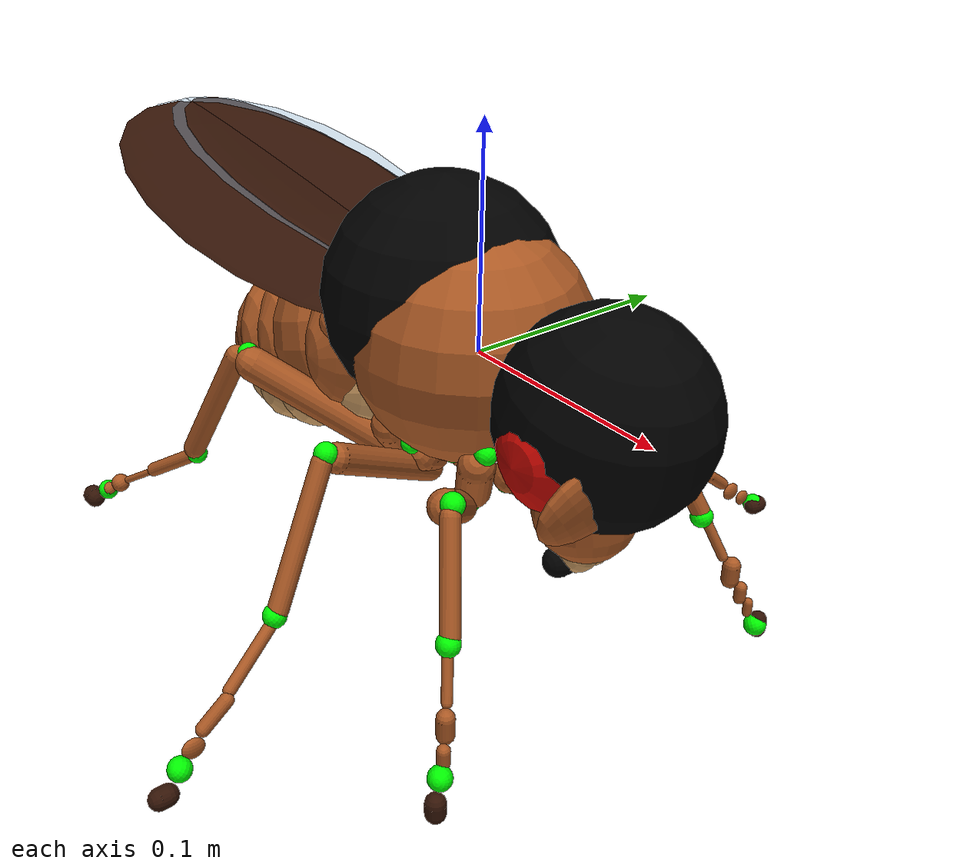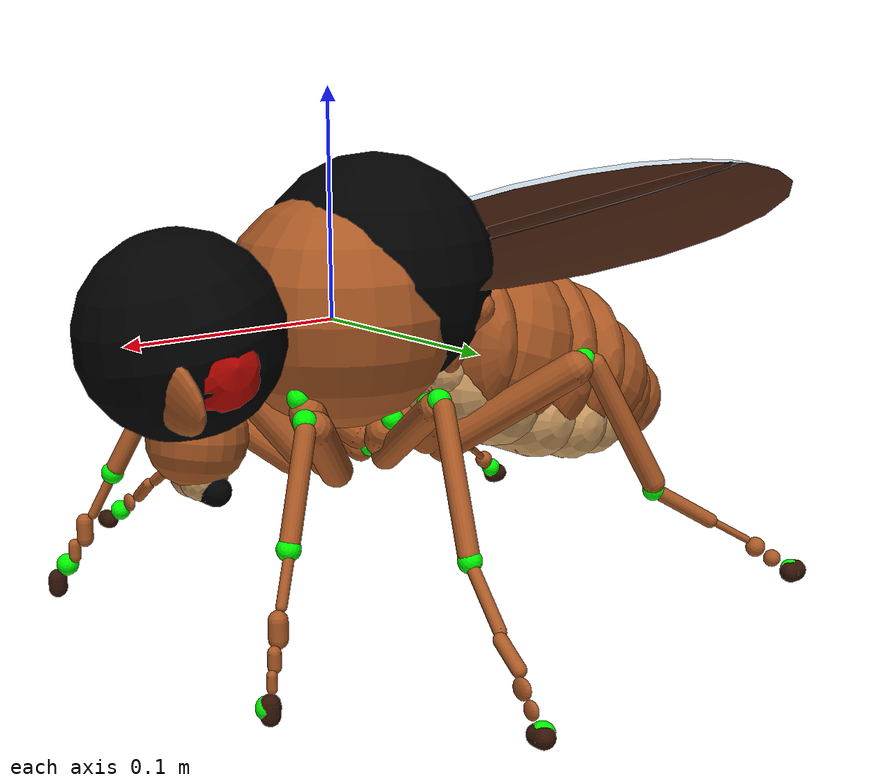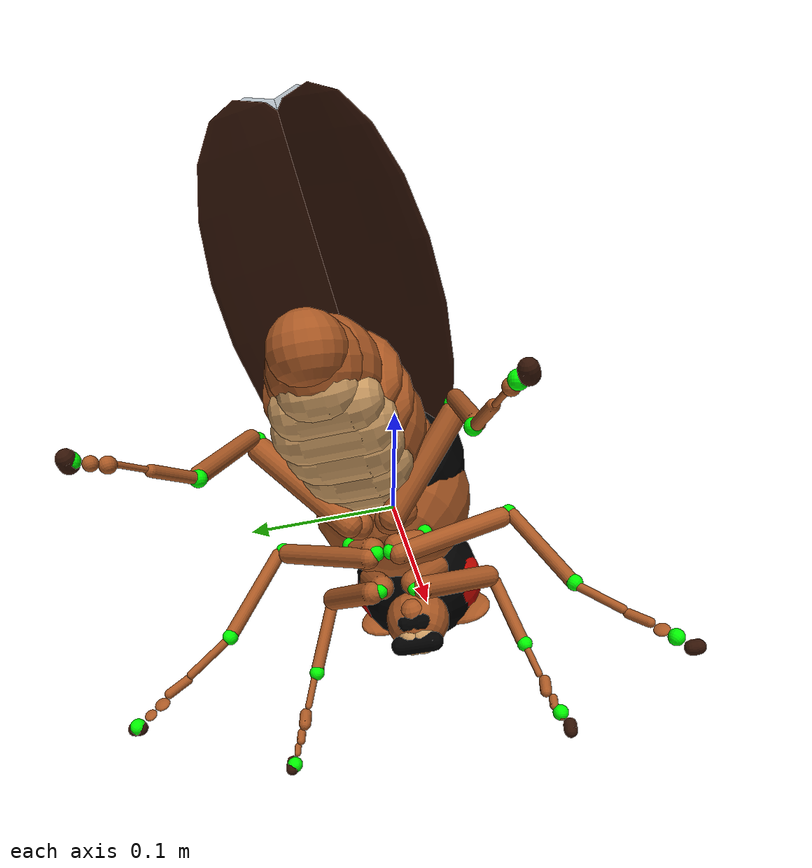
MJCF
<mujoco model="fruitfly">
  <compiler autolimits="true" angle="radian" />
  <option gravity="0 0 -981" density="0.00128" viscosity="0.000185" cone="elliptic" noslip_iterations="3" />
  <size njmax="300" nconmax="100" nkey="1" />
  <default>
    <mesh scale="0.1 0.1 0.1" />
    <geom friction="0.5" solref="0.0002 1" solimp="0.95 0.99 0.01" />
    <general ctrllimited="true" />
    <default class="body">
      <joint limited="true" solreflimit="0.001 1" armature="1e-02" />
      <geom type="mesh" contype="0" conaffinity="0" group="1" material="body" density="0.478" />
      <site group="3" size="0.01" />
      <default class="collision">
        <geom type="capsule" contype="1" conaffinity="1" condim="1" group="4" material="blue" density="0" />
        <default class="adhesion-collision">
          <geom material="pink" friction="0.6" margin="0.0005" gap="0.0005" />
          <site type="capsule" />
        </default>
        <default class="collision-membrane">
          <geom group="5" />
        </default>
      </default>
      <default class="adhesion">
        <general dyntype="none" dynprm="1" />
        <default class="adhesion_claw">
          <adhesion group="3" ctrlrange="0 1" gain="0.985" />
        </default>
        <default class="adhesion_labrum">
          <adhesion group="3" ctrlrange="0 1" gain="1" />
        </default>
      </default>
      <default class="head">
        <joint stiffness="0.03" damping="0.001" />
        <geom density="0.575" />
        <general forcerange="-0.1 0.1" gainprm="0.1" />
        <default class="labrum">
          <general forcerange="-0.01 0.01" gainprm="0.01" />
        </default>
      </default>
      <default class="antenna">
        <joint damping="0.0003" />
        <general forcerange="-0.01 0.01" gainprm="0.01" />
        <default class="antenna_extend">
          <joint axis="1 0 0" range="-0.2 0.5" />
        </default>
        <default class="antenna_twist">
          <joint axis="0 1 0" range="-0.1 0.09" />
        </default>
        <default class="antenna_abduct">
          <joint axis="0 0 1" range="-0.4 0.8" />
        </default>
      </default>
      <default class="wing">
        <joint stiffness="0.01" damping="0.0005" />
        <general ctrlrange="-.55 .55" />
        <default class="yaw">
          <joint axis="0 0 1" range="-1.5 1.5" springref="1.5" />
          <general gainprm="3" />
        </default>
        <default class="roll">
          <joint axis="1 0 0" range="-1 1.5" springref="0.7" />
          <general gainprm="2" />
        </default>
        <default class="pitch">
          <joint axis="0 1 0" range="-1.27 2.92" springref="-1" />
          <general gainprm="1" />
        </default>
        <default class="wing-inertial">
          <geom type="box" rgba="0 0 0 0" mass="8e-06" />
        </default>
        <default class="wing-fluid">
          <geom type="ellipsoid" group="3" mass="0" />
        </default>
      </default>
      <default class="abdomen">
        <joint group="3" stiffness="0.05" damping="0.01" />
        <geom density="0.445" />
        <general gainprm="0.1" />
        <default class="abduct_abdomen">
          <joint axis="0 0 1" range="-0.1 0.1" />
        </default>
        <default class="extend_abdomen">
          <joint axis="1 0 0" range="-0.15 0.1" />
        </default>
      </default>
      <default class="haltere">
        <joint axis="1 0 0" springdamper="0.005 0.1" range="-0.2 0.2" />
      </default>
      <default class="leg">
        <joint stiffness="0.01" />
        <geom density="1.21" />
        <default class="coxa">
          <default class="twist_coxa_T1">
            <joint axis="0 1 0" range="-0.8 0.8" />
            <general ctrlrange="-10 10" ctrllimited="true" />
          </default>
          <default class="flexion_coxa_T1">
            <joint axis="0 0 1" range="-1 0.7" />
            <general ctrlrange="-10 10" ctrllimited="true" />
          </default>
          <default class="extend_coxa_T1">
            <joint axis="1 0 0" range="-0.2 1.7" />
            <general ctrlrange="-10 10" ctrllimited="true" />
          </default>
          <default class="twist_coxa_T2">
            <joint axis="0 1 0" range="-0.75 0.8" />
            <general ctrlrange="-10 10" ctrllimited="true" />
          </default>
          <default class="flexion_coxa_T2">
            <joint axis="0 0 1" range="-0.5 0.3" />
            <general ctrlrange="-10 10" ctrllimited="true" />
          </default>
          <default class="extend_coxa_T2">
            <joint axis="1 0 0" range="-0.2 0.9" />
            <general ctrlrange="-10 10" ctrllimited="true" />
          </default>
          <default class="twist_coxa_T3">
            <joint axis="0 1 0" range="-0.15 0.8" />
            <general ctrlrange="-10 10" ctrllimited="true" />
          </default>
          <default class="flexion_coxa_T3">
            <joint axis="0 0 1" range="-0.9 0.25" />
            <general ctrlrange="-10 10" ctrllimited="true" />
          </default>
          <default class="extend_coxa_T3">
            <joint axis="1 0 0" range="-0.3 1.3" />
            <general ctrlrange="-10 10" ctrllimited="true" />
          </default>
        </default>
        <default class="femur">
          <default class="twist_femur">
            <joint axis="0 1 0" range="-1 1" />
            <general ctrlrange="-10 10" ctrllimited="true" />
            <default class="twist_femur_T2">
              <general ctrlrange="-10 10" ctrllimited="true" />
            </default>
            <default class="twist_femur_T3">
              <general ctrlrange="-10 10" ctrllimited="true" />
            </default>
          </default>
          <default class="extend_femur">
            <joint axis="1 0 0" range="-0.15 2" />
            <default class="extend_femur_T1">
              <general ctrlrange="-10 10" ctrllimited="true" />
            </default>
            <default class="extend_femur_T2">
              <general ctrlrange="-10 10" ctrllimited="true" />
            </default>
          </default>
          <default class="extend_femur_T3">
            <joint axis="1 0 0" range="-0.7 1.5" />
            <general ctrlrange="-10 10" ctrllimited="true" />
          </default>
        </default>
        <default class="tibia">
          <default class="extend_tibia">
            <joint axis="1 0 0" range="-1.35 1.3" />
            <general ctrlrange="-10 10" ctrllimited="true" />
            <default class="extend_tibia_T2">
              <general ctrlrange="-10 10" ctrllimited="true" />
            </default>
            <default class="extend_tibia_T3">
              <general ctrlrange="-10 10" ctrllimited="true" />
            </default>
          </default>
        </default>
        <default class="tarsus">
          <joint axis="1 0 0" />
          <default class="extend_tarsus_T1">
            <joint range="-0.7 1.2" />
            <general ctrlrange="-10 10" ctrllimited="true" />
          </default>
          <default class="extend_tarsus_T2">
            <joint range="-1 1.8" />
            <general ctrlrange="-10 10" ctrllimited="true" />
          </default>
          <default class="extend_tarsus_T3">
            <joint range="-0.8 1.2" />
            <general ctrlrange="-10 10" ctrllimited="true" />
          </default>
          <default class="extend_tarsus">
            <joint group="3" stiffness="0.1" range="-0.36 0.36" />
            <general ctrlrange="-10 10" ctrllimited="true" />
          </default>
        </default>
      </default>
    </default>
  </default>
  <visual>
    <global offwidth="3840" offheight="2160" />
    <quality shadowsize="2048" offsamples="24" />
    <headlight ambient="0.4 0.4 0.4" diffuse="0.8 0.8 0.8" specular="0.1 0.1 0.1" />
    <map stiffness="1e+04" stiffnessrot="5e+04" force="2e-05" />
    <scale jointwidth="0.01" framewidth="0.01" />
  </visual>
  <statistic meansize="0.02" />
  <asset>
    <texture name="grid" type="2d" builtin="checker" rgb1=".1 .2 .3" rgb2=".2 .3 .4" width="300" height="300" mark="edge" markrgb=".2 .3 .4" />
    <material name="grid" texture="grid" texrepeat="1 1" texuniform="true" reflectance=".2" />
    <texture type="2d" name="groundplane" builtin="checker" rgb1="0.2 0.3 0.4" rgb2="0.1 0.2 0.3" width="200" height="200" />
    <material name="body" shininess="0.6" rgba="0.674 0.35 0.143 1" />
    <material name="red" shininess="0.692" rgba="0.8 0.0279 0.00154 1" />
    <material name="ocelli" shininess="1" rgba="0.128 0.0488 0.0154 1" />
    <material name="black" shininess="0.727" rgba="0 0 0 1" />
    <material name="bristle-brown" shininess="0.907" rgba="0 0 0 1" />
    <material name="lower" shininess="0.6" rgba="0.799 0.61 0.386 1" />
    <material name="brown" shininess="0.6" rgba="0.202 0.0782 0.0262 1" />
    <material name="membrane" specular="0.62" shininess="0.907" rgba="0.539 0.686 0.8 0.4" />
    <material name="blue" shininess="0.6" rgba="0.2 0.3 1 1" />
    <material name="ballsurface" texture="groundplane" texuniform="true" texrepeat="2 2" reflectance="0.2" />
    <material name="pink" rgba="0.6 0.3 1 1" />
  </asset>
  <worldbody>
    <body name="thorax" childclass="body">
      <light name="right" mode="trackcom" pos="0 -1 1" dir="0 1 -1" diffuse="0.3 0.3 0.3" />
      <camera name="track1" mode="trackcom" pos="0.6 0.6 0.22" quat="0.312 0.221 0.533 0.754" />
      <camera name="track2" mode="trackcom" pos="0 -1.1 0.1" quat="0.707 0.707 0 0" />
      <camera name="track3" mode="trackcom" pos="-0.9 -0.9 0.9" quat="0.82 0.425 -0.176 -0.34" />
      <camera name="back" mode="track" pos="-0.462 0 0.297" xyaxes="0 -1 0 0.707 0 0.707" />
      <camera name="side" mode="track" pos="-0.055 0.424 -0.064" xyaxes="-1 0 0 0 0 1" />
      <camera name="bottom" mode="track" pos="0.01 0 -0.516" xyaxes="0 1 0 0.991 0 0.136" />
      <light name="left" mode="trackcom" pos="0 1 1" dir="0 -1 -1" diffuse="0.3 0.3 0.3" />
      <light name="tracking" mode="trackcom" pos="0 0 1" />
      <site name="thorax_site" />
      <site name="hover_up_dir" pos="0.0262 0 0.0262" quat="0.915 0 0.403 0" />
      <geom name="thorax" mass="0.00034" pos="-0.00416991 3.8147e-07 0.0046216" type="sphere" size="0.0526589" />
      <geom name="thorax_collision" class="collision" type="ellipsoid" size="0.0437 0.0437 0.0551" pos="0.00168 0 -0.00262" quat="0 -0.479 0 -0.878" />
      <geom name="thorax_collision2" class="collision" type="ellipsoid" size="0.0499 0.028 0.0114" pos="-0.00445 0 0.0219" quat="0 -0.199 0 -0.98" />
      <geom name="thorax_black" material="black" mass="0" pos="-0.0238946 -0.000445322 0.0183603" type="sphere" size="0.0530646" />
      <body name="head" childclass="head" pos="0.0567 3.81e-07 -0.00305" quat="0.702 -0.087 0.087 -0.702">
        <site name="head_site" pos="0 0.015 0" quat="0 0 0 1" />
        <geom name="head_collision" class="collision" type="ellipsoid" size="0.0455 0.0262 0.0324" pos="0 0.0149 0.000875" euler="0.3 0 0" />
        <geom name="head" pos="3.40006e-08 0.0196711 0.00157814" type="sphere" size="0.0322604" />
        <geom name="head_red" material="red" pos="3.40006e-08 0.0178867 0.00340486" type="capsule" size="0.0259542 0.0193202" quat="0.401538 0.582037 -0.401538 -0.582037" />
        <geom name="head_ocelli" material="ocelli" pos="-1.1812e-05 0.0192126 0.0317863" type="capsule" size="0.00299767 0.00237788" quat="0.557699 -0.434709 0.557699 -0.434709" />
        <camera name="eye_right" fovy="140" pos="0.0219 0.0131 0" quat="0.474 0.688 -0.344 -0.429" />
        <camera name="eye_left" fovy="140" pos="-0.0219 0.0131 0" quat="0.474 0.688 0.344 0.429" />
        <geom name="head_black" material="black" mass="0" pos="-0.000956352 0.0164357 0.00955916" type="sphere" size="0.0439881" />
        <body name="rostrum" pos="0 0.0368 -0.0235" quat="2.2e-07 -1.21e-07 0.192 -0.981">
          <geom name="rostrum" pos="-2.00204e-08 0.0188873 -0.00389886" type="sphere" size="0.0216166" />
          <geom name="rostrum_collision_right" class="collision" size="0.0035" fromto="0.00613 0.0324 0 0.0114 0.0245 -0.0236" />
          <geom name="rostrum_collision_left" class="collision" size="0.0035" fromto="-0.00613 0.0324 0 -0.0114 0.0245 -0.0236" />
          <geom name="rostrum_collision" class="collision" type="ellipsoid" size="0.0131 0.0219 0.0131" pos="0 0.0175 0.00263" euler="0.1 0 0" />
          <geom name="rostrum_bristle-brown" material="bristle-brown" pos="-1.92753e-08 0.0237805 -0.0252153" type="capsule" size="0.00642836 0.011294" quat="0.463827 0.533727 0.463827 0.533727" />
          <body name="haustellum" pos="0 0.0377 0" quat="2.33e-07 -1.56e-07 -0.347 0.938">
            <geom name="haustellum" pos="4.66281e-08 0.0122925 -0.00107128" type="capsule" size="0.00908976 0.00490103" quat="0.632956 0.774188 0 0" />
            <geom name="haustellum_collision" class="collision" type="capsule" size="0.00788 0.00788" pos="0 0.0123 -0.000948" quat="0.633 0.774 0 0" />
            <geom name="haustellum_black" material="black" mass="0" pos="9.39109e-05 0.0141229 -0.00269677" type="capsule" size="0.00953929 0.00374094" quat="0.340035 0.619981 -0.340035 -0.619981" />
            <body name="labrum_left" childclass="labrum" pos="-0.00263 0.0182 0" quat="0.741 -0.0142 -0.591 0.319">
              <geom name="labrum_left_lower" material="lower" pos="-0.000802061 0.0083688 -0.00346569" type="sphere" size="0.0102514" />
              <geom name="labrum_left_lower_collision" class="adhesion-collision" type="ellipsoid" size="0.0035 0.00875 0.0131" pos="-0.000603 0.0106 -0.00438" quat="-0.174 -0.715 0.0876 0.672" />
            </body>
            <body name="labrum_right" childclass="labrum" pos="0.00263 0.0182 0" quat="0.699 0.00274 0.642 -0.316">
              <geom name="labrum_right_lower" material="lower" pos="0.00111101 0.00854922 -0.00331572" type="sphere" size="0.0102514" />
              <geom name="labrum_right_lower_collision" class="adhesion-collision" type="ellipsoid" size="0.0035 0.00875 0.0131" pos="0.00116 0.0106 -0.00414" quat="-0.175 -0.668 -0.0724 -0.719" />
            </body>
          </body>
        </body>
        <body name="antenna_left" pos="-0.00795 0.0378 0.0129" quat="0.785 -0.59 -0.0128 0.192">
          <geom name="antenna_left" pos="-0.0127332 0.0172294 0.00276934" type="ellipsoid" size="0.00540057 0.0168397 0.0238518" quat="-0.191167 0.618154 -0.382605 -0.659511" />
          <geom name="antenna_left_collision" class="collision" type="capsule" size="0.00481 0.00875" pos="0 0.0114 0.00263" quat="0.634 -0.773 0 0" />
          <geom name="antenna_left_black" material="black" mass="0" pos="-0.00108258 0.00432222 0.00683451" type="sphere" size="0.00538933" />
        </body>
        <body name="antenna_right" pos="0.00861 0.038 0.0129" quat="0.59 0.785 -0.192 -0.0128">
          <geom name="antenna_right" pos="0.0122325 -0.0172292 -0.00276918" type="ellipsoid" size="0.0054006 0.0168397 0.0238519" quat="-0.65951 0.382606 0.618154 0.191168" />
          <geom name="antenna_right_collision" class="collision" type="capsule" size="0.00481 0.00875" pos="-0.000616 -0.0114 -0.00231" quat="0.782 0.623 -0.0258 -0.0164" />
          <geom name="antenna_right_black" material="black" mass="0" pos="0.000581903 -0.00432197 -0.00683437" type="sphere" size="0.00538934" />
        </body>
      </body>
      <body name="wing_left" childclass="wing" pos="-0.00694 0.0432 0.0091" quat="0.617    -0.402    -0.304    -0.604">
        <geom name="wing_left_brown" material="brown" mass="0" pos="0.0243478 -0.128904 -0.0265263" type="ellipsoid" size="0.00312095 0.0525679 0.133699" quat="-0.656571 -0.663353 0.253573 -0.254121" />
        <geom name="wing_left_brown_collision" class="collision" type="ellipsoid" size="0.00219 0.0175 0.114" pos="0.00186 -0.11 -0.00166" quat="-0.673 -0.647 0.26 -0.248" />
        <geom name="wing_left_membrane" material="membrane" mass="0" pos="0.0266037 -0.132028 -0.0290936" type="ellipsoid" size="0.000174289 0.0554888 0.130025" quat="-0.649138 -0.670539 0.250921 -0.256976" />
        <geom name="wing_left_membrane_collision" class="collision-membrane" type="ellipsoid" size="0.00306 0.0551 0.114" pos="0.0263 -0.148 -0.0289" quat="-0.685 -0.634 0.265 -0.243" />
        <geom name="wing_left_fluid" class="wing-fluid" size="0.0005 0.0551 0.114" pos="0.0263 -0.148 -0.0289" quat="-0.685 -0.634 0.265 -0.243" />
        <geom name="wing_left_inertial" class="wing-inertial" size="0.0005 0.0551 0.114" pos="0.0263 -0.148 -0.0289" quat="-0.685 -0.634 0.265 -0.243" />
      </body>
      <body name="wing_right" childclass="wing" pos="-0.00694 -0.0432 0.0091" quat="-0.304     0.604    -0.617    -0.402 ">
        <geom name="wing_right_brown" material="brown" mass="0" pos="-0.0243472 0.128903 0.0265271" type="ellipsoid" size="0.00312096 0.0525678 0.133699" quat="0.25411 0.253564 0.663354 -0.656578" />
        <geom name="wing_right_brown_collision" class="collision" type="ellipsoid" size="0.00219 0.0175 0.114" pos="-0.00186 0.11 0.00166" quat="0.248 0.26 0.647 -0.673" />
        <geom name="wing_right_membrane" material="membrane" mass="0" pos="-0.0266031 0.132027 0.0290942" type="ellipsoid" size="0.000174286 0.0554888 0.130025" quat="0.256968 0.250913 0.670542 -0.649141" />
        <geom name="wing_right_membrane_collision" class="collision-membrane" type="ellipsoid" size="0.00306 0.0551 0.114" pos="-0.0263 0.148 0.0289" quat="0.243 0.265 0.634 -0.685" />
        <geom name="wing_right_fluid" class="wing-fluid" size="0.0005 0.0551 0.114" pos="-0.0263 0.148 0.0289" quat="0.243 0.265 0.634 -0.685" />
        <geom name="wing_right_inertial" class="wing-inertial" size="0.0005 0.0551 0.114" pos="-0.0263 0.148 0.0289" quat="0.243 0.265 0.634 -0.685" />
      </body>
      <body name="abdomen" childclass="abdomen" pos="-0.0447 -0.000555 0.00428" quat="-0.704 -0.0859 -0.0853 -0.7">
        <geom name="abdomen" pos="-6.51608e-05 0.0029425 -0.012634" type="ellipsoid" size="0.00970442 0.0303679 0.0327778" quat="0.587787 0.38944 0.581575 0.405727" />
        <geom name="abdomen_lower" material="lower" pos="-0.000338511 -0.00113727 -0.0331854" type="capsule" size="0.0105244 0.0153999" quat="0.538679 0.454951 0.542017 0.457233" />
        <geom name="abdomen_collision" class="collision" type="cylinder" size="0.0281 0.0102 0" pos="-0.000187 0.00646 -0.0146" quat="0.0104 -0.0205 0.824 0.566" />
        <body name="abdomen_2" pos="0 0.0119 0" quat="0.981 -0.192 -0.000269 0.00144">
          <geom name="abdomen_2" pos="-0.000569904 0.0151522 -0.0216331" type="ellipsoid" size="0.0183528 0.041455 0.0415075" quat="0.480713 0.518568 0.47576 0.52312" />
          <geom name="abdomen_2_lower" material="lower" pos="0.000506006 0.0169168 -0.0423167" type="capsule" size="0.0219737 0.0100268" quat="0.274881 0.650786 0.285815 0.647478" />
          <geom name="abdomen_2_collision" class="collision" type="cylinder" size="0.035 0.0142 0" pos="-0.000182 0.0166 -0.015" quat="-0.0458 -0.0256 0.694 0.718" />
          <body name="abdomen_3" pos="0 0.0212 0" quat="0.996 -0.0909 6.69e-05 0.000525">
            <geom name="abdomen_3" pos="0.000114405 0.0211676 -0.0214114" type="sphere" size="0.0422489" />
            <geom name="abdomen_3_lower" material="lower" pos="0.000551221 0.022426 -0.0453978" type="capsule" size="0.0221697 0.0113192" quat="0.128107 0.694435 0.131295 0.695781" />
            <geom name="abdomen_3_collision" class="collision" type="cylinder" size="0.0371 0.0194 0" pos="3.29e-05 0.0198 -0.0136" quat="0.697 -0.605 0.274 0.271" />
            <body name="abdomen_4" pos="0 0.0313 0" quat="0.999 -0.0332 0.000147 -0.000229">
              <geom name="abdomen_4" pos="0.000414169 0.0166373 -0.0197631" type="ellipsoid" size="0.0206209 0.0439879 0.0415087" quat="0.436858 0.549622 0.436698 0.562464" />
              <geom name="abdomen_4_lower" material="lower" pos="0.000508993 0.0196814 -0.046953" type="capsule" size="0.0204552 0.0135975" quat="0.191225 0.679086 0.191684 0.682299" />
              <geom name="abdomen_4_collision" class="collision" type="cylinder" size="0.0377 0.0176 0" pos="9.67e-05 0.015 -0.0158" quat="-0.0133 -0.062 0.637 0.768" />
              <body name="abdomen_5" pos="0 0.0262 0" quat="0.999 -0.0368 -4.72e-05 -0.000327">
                <geom name="abdomen_5" pos="0.000492611 0.0129724 -0.0169182" type="ellipsoid" size="0.0184518 0.0394784 0.0402031" quat="0.433272 0.559456 0.426469 0.563391" />
                <geom name="abdomen_5_lower" material="lower" pos="0.000479531 0.0154536 -0.0433966" type="capsule" size="0.018756 0.0165597" quat="-0.405757 0.580122 -0.403897 0.579385" />
                <geom name="abdomen_5_collision" class="collision" type="cylinder" size="0.0353 0.016 0" pos="0.000282 0.0105 -0.0156" quat="-0.00496 -0.0596 0.624 0.779" />
                <body name="abdomen_6" pos="0 0.0213 0" quat="0.998 -0.0662 0.000156 -0.000351">
                  <geom name="abdomen_6" pos="2.53447e-05 0.0120278 -0.016716" type="sphere" size="0.0319812" />
                  <geom name="abdomen_6_lower" material="lower" pos="6.46424e-05 0.0150611 -0.0365175" type="capsule" size="0.0171362 0.014255" quat="-0.408916 0.578592 -0.406596 0.576799" />
                  <geom name="abdomen_6_collision" class="collision" type="cylinder" size="0.0318 0.0141 0" pos="-0.000157 0.00942 -0.0143" quat="-0.00411 0.000397 0.592 0.806" />
                  <body name="abdomen_7" pos="0 0.0182 0" quat="0.995 -0.102 -1.79e-06 -0.000187">
                    <geom name="abdomen_8" pos="-8.52224e-05 0.0248244 -0.00930379" type="sphere" size="0.021563" />
                    <geom name="abdomen_7" pos="0.000258939 0.00925098 -0.0162839" type="sphere" size="0.0271919" />
                    <geom name="abdomen_7_lower" material="lower" pos="9.75036e-05 0.0137549 -0.0292241" type="capsule" size="0.017067 0.00547658" quat="-0.406201 0.58057 -0.402287 0.579745" />
                  </body>
                </body>
              </body>
            </body>
          </body>
        </body>
      </body>
      <body name="haltere_left" childclass="haltere" pos="-0.0386 0.0247 -0.00866" quat="0.291 -0.204 0.826 0.439">
        <geom name="haltere_left" pos="0.000759072 0.0144939 0.000921985" type="capsule" size="0.00732178 0.00785458" quat="-0.670857 0.700621 -0.160982 -0.182114" />
      </body>
      <body name="haltere_right" childclass="haltere" pos="-0.0386 -0.0247 -0.00866" quat="-0.438 -0.829 0.206 -0.28">
        <geom name="haltere_right" pos="-0.000735649 0.0148176 0.00102949" type="capsule" size="0.00732644 0.00784002" quat="0.161071 -0.144516 0.707528 0.672737" />
      </body>
      <body name="coxa_T1_left" childclass="leg" pos="0.0317 0.0209 -0.0272" quat="-0.532 0.787 -0.311 -0.0229">
        <joint name="coxa_flexion_T1_left" class="flexion_coxa_T1" />
        <joint name="coxa_twist_T1_left" class="twist_coxa_T1" />
        <geom name="coxa_T1_left" pos="-0.000324803 0.0228864 0.000668814" type="capsule" size="0.00787721 0.016155" quat="-0.41761 -0.383358 -0.53138 0.629503" />
        <geom name="coxa_T1_left_collision" class="collision" type="ellipsoid" size="0.00679 0.00752 0.0208" pos="-2.04e-05 0.0261 -0.000454" quat="-0.417 -0.383 -0.532 0.63" />
        <site name="tracking[coxa_T1_left]" pos="0 0 0" size="0.005" group="0" rgba="0 1 0 1" />
        <body name="femur_T1_left" pos="0 0.0437 0" quat="0 0 0.252 0.968">
          <joint name="femur_twist_T1_left" class="twist_femur" />
          <joint name="femur_T1_left" class="extend_femur_T1" />
          <geom name="femur_T1_left" pos="0.00224676 0.0340335 0.00302449" type="capsule" size="0.00728177 0.0304885" quat="0.666666 -0.676013 0.226023 0.217892" />
          <geom name="femur_T1_left_collision" class="collision" size="0.005" fromto="0.00263 0.00263 0.00438 0 0.0662 0" />
          <site name="tracking[femur_T1_left]" pos="0 0 0" size="0.005" group="0" rgba="0 1 0 1" />
          <body name="tibia_T1_left" pos="0 0.0697 0" quat="0.186 0.162 0.677 -0.694">
            <joint name="tibia_T1_left" class="extend_tibia" />
            <geom name="tibia_T1_left" pos="-0.000613914 -0.0268236 -8.63539e-05" type="capsule" size="0.00419274 0.0222342" quat="-0.297997 0.303125 0.660506 0.618906" />
            <geom name="tibia_T1_left_collision" class="collision" size="0.00362" fromto="0 0 0 0 -0.051 0.00175" />
            <site name="tracking[tibia_T1_left]" pos="0 0 0" size="0.005" group="0" rgba="0 1 0 1" />
            <body name="tarsus_T1_left" pos="0 -0.051 0.00175" quat="0.039 0.998 0.00674 0.0474">
              <joint name="tarsus_T1_left" class="extend_tarsus_T1" />
              <geom name="tarsus_T1_left" pos="-0.000558231 0.0120928 0.000950103" type="capsule" size="0.00224226 0.0102124" quat="-0.321106 -0.339421 -0.62503 0.625317" />
              <geom name="tarsus_T1_left_collision" class="collision" size="0.00204" fromto="0 0 0 -0.000165 0.0235 0.00174" />
              <site name="tracking[tarsus_T1_left]" pos="0 0 0" size="0.005" group="0" rgba="0 1 0 1" />
              <body name="tarsus2_T1_left" pos="-0.000165 0.0235 0.00174">
                <geom name="tarsus2_T1_left" pos="-0.000179534 0.00750416 -0.00025319" type="capsule" size="0.00394099 0.00372312" quat="0.373037 0.231023 0.468046 -0.767076" />
                <geom name="tarsus2_T1_left_collision" class="collision" size="0.00159" fromto="0 0 0 0.000113 0.0136 0.000556" />
                <body name="tarsus3_T1_left" pos="0.000113 0.0136 0.000556">
                  <geom name="tarsus3_T1_left" pos="-0.000321019 0.00530192 -0.000800795" type="capsule" size="0.00272893 0.00286279" quat="-0.373037 -0.231023 -0.468046 0.767076" />
                  <geom name="tarsus3_T1_left_collision" class="collision" size="0.00149" fromto="0 0 0 -0.000255 0.00909 0.0002" />
                  <body name="tarsus4_T1_left" pos="-0.000255 0.00909 0.0002">
                    <geom name="tarsus4_T1_left" pos="-0.000312252 0.00457831 -0.000743256" type="capsule" size="0.0020973 0.0026698" quat="0.373037 0.231023 0.468046 -0.767076" />
                    <geom name="tarsus4_T1_left_collision" class="collision" size="0.00148" fromto="0 0 0 -7.12e-05 0.00906 -0.00081" />
                    <body name="claw_T1_left" pos="-7.12e-05 0.00906 -0.00081">
                      <geom name="tarsal_claw_T1_left" material="brown" pos="-0.00119458 0.00574181 0.000681628" type="capsule" size="0.00395499 0.00245772" quat="-0.373037 -0.231023 -0.468046 0.767076" />
                      <geom name="tarsal_claw_T1_left_collision" class="adhesion-collision" type="capsule" size="0.00199" fromto="0 0 0 -7.12e-05 0.00906 -0.00081" />
                      <site name="claw_T1_left" class="adhesion-collision" size="0.00219" fromto="0 0 0 -7.12e-05 0.00906 -0.00081" />
                      <site name="tracking[claw_T1_left]" pos="0 0.005 0" size="0.005" group="0" rgba="0 1 0 1" />
                    </body>
                  </body>
                </body>
              </body>
            </body>
          </body>
        </body>
      </body>
      <body name="coxa_T1_right" childclass="leg" pos="0.0317 -0.0209 -0.0272" quat="0.319 0.011 -0.543 -0.777">
        <joint name="coxa_flexion_T1_right" class="flexion_coxa_T1" />
        <joint name="coxa_twist_T1_right" class="twist_coxa_T1" />
        <geom name="coxa_T1_right" pos="0.00105469 -0.0231929 0.000273755" type="capsule" size="0.00787722 0.016155" quat="-0.507459 0.628009 0.446869 0.385225" />
        <geom name="coxa_T1_right_collision" class="collision" type="ellipsoid" size="0.00679 0.00752 0.0208" pos="0.00061 -0.026 0.00153" quat="-0.508 0.628 0.447 0.385" />
        <site name="tracking[coxa_T1_right]" pos="0 0 0" size="0.005" group="0" rgba="0 1 0 1" />
        <body name="femur_T1_right" pos="0 -0.0436 0" quat="0 0 0.261 0.965">
          <joint name="femur_twist_T1_right" class="twist_femur" />
          <joint name="femur_T1_right" class="extend_femur_T1" />
          <geom name="femur_T1_right" pos="-0.00230382 -0.0339572 -0.00290191" type="capsule" size="0.0072737 0.0304967" quat="0.231721 -0.23911 -0.67152 -0.661961" />
          <geom name="femur_T1_right_collision" class="collision" size="0.005" fromto="-0.00263 -0.00263 -0.00438 0 -0.0663 0" />
          <site name="tracking[femur_T1_right]" pos="0 0 0" size="0.005" group="0" rgba="0 1 0 1" />
          <body name="tibia_T1_right" pos="0 -0.0698 0" quat="0.163 0.148 0.688 -0.692">
            <joint name="tibia_T1_right" class="extend_tibia" />
            <geom name="tibia_T1_right" pos="1.70469e-05 0.0265693 -0.000187745" type="capsule" size="0.00421148 0.0222152" quat="-0.666105 -0.611164 -0.299741 0.304858" />
            <geom name="tibia_T1_right_collision" class="collision" size="0.00362" fromto="0 0 0 0 0.0515 -0.00175" />
            <site name="tracking[tibia_T1_right]" pos="0 0 0" size="0.005" group="0" rgba="0 1 0 1" />
            <body name="tarsus_T1_right" pos="0 0.0515 -0.00175" quat="-0.0745 -0.995 0.0133 0.0704">
              <joint name="tarsus_T1_right" class="extend_tarsus_T1" />
              <geom name="tarsus_T1_right" pos="-0.00015324 -0.0114806 -0.000492614" type="capsule" size="0.002247 0.0102077" quat="-0.674549 0.644256 0.235119 0.273199" />
              <geom name="tarsus_T1_right_collision" class="collision" size="0.00204" fromto="0 0 0 -0.000965 -0.0227 -0.00161" />
              <site name="tracking[tarsus_T1_right]" pos="0 0 0" size="0.005" group="0" rgba="0 1 0 1" />
              <body name="tarsus2_T1_right" pos="-0.000965 -0.0227 -0.00161">
                <geom name="tarsus2_T1_right" pos="0.000428355 -0.00758294 -0.000280125" type="capsule" size="0.00369573 0.00398953" quat="0.528967 -0.777951 -0.298981 -0.15999" />
                <geom name="tarsus2_T1_right_collision" class="collision" size="0.00159" fromto="0 0 0 0.000143 -0.0136 -0.00168" />
                <body name="tarsus3_T1_right" pos="0.000143 -0.0136 -0.00168">
                  <geom name="tarsus3_T1_right" pos="0.000413493 -0.00522729 0.000575659" type="capsule" size="0.00273365 0.00285726" quat="-0.528967 0.777951 0.298981 0.15999" />
                  <geom name="tarsus3_T1_right_collision" class="collision" size="0.00149" fromto="0 0 0 0.000437 -0.00899 -0.00063" />
                  <body name="tarsus4_T1_right" pos="0.000437 -0.00899 -0.00063">
                    <geom name="tarsus4_T1_right" pos="0.000522504 -0.00467082 -8.55839e-05" type="capsule" size="0.00228095 0.0024688" quat="0.528967 -0.777951 -0.298981 -0.15999" />
                    <geom name="tarsus4_T1_right_collision" class="collision" size="0.00148" fromto="0 0 0 0.000765 -0.00899 0.000134" />
                    <body name="claw_T1_right" pos="0.000765 -0.00899 0.000134">
                      <geom name="tarsal_claw_T1_right" material="brown" pos="0.000996252 -0.00583564 -0.00130085" type="capsule" size="0.00422871 0.00228663" quat="-0.528967 0.777951 0.298981 0.15999" />
                      <geom name="tarsal_claw_T1_right_collision" class="adhesion-collision" type="capsule" size="0.00199" fromto="0 0 0 0.000765 -0.00899 0.000134" />
                      <site name="claw_T1_right" class="adhesion-collision" size="0.00219" fromto="0 0 0 0.000765 -0.00899 0.000134" />
                      <site name="tracking[claw_T1_right]" pos="0 0.005 0" size="0.005" group="0" rgba="0 1 0 1" />
                    </body>
                  </body>
                </body>
              </body>
            </body>
          </body>
        </body>
      </body>
      <body name="coxa_T2_left" childclass="leg" pos="-0.0144 0.0241 -0.0425" quat="-0.371 0.917 -0.126 -0.0722">
        <joint name="coxa_flexion_T2_left" class="flexion_coxa_T2" />
        <joint name="coxa_twist_T2_left" class="twist_coxa_T2" />
        <geom name="coxa_T2_left" pos="0.0015033 0.0150607 -0.000523359" type="capsule" size="0.00801424 0.00727658" quat="-0.638897 -0.464659 -0.461154 0.404029" />
        <geom name="coxa_T2_left_collision" class="collision" type="ellipsoid" size="0.00788 0.007 0.0149" pos="0.000349 0.0143 -0.00216" quat="0.707 -0.707 0 0" />
        <site name="tracking[coxa_T2_left]" pos="0 0 0" size="0.005" group="0" rgba="0 1 0 1" />
        <body name="femur_T2_left" pos="0 0.0281 0" quat="0 0 0.128 0.992">
          <joint name="femur_twist_T2_left" class="twist_femur_T2" />
          <joint name="femur_T2_left" class="extend_femur_T2" />
          <site name="tracking[femur_T2_left]" pos="0 0 0" size="0.005" group="0" rgba="0 1 0 1" />
          <geom name="femur_T2_left" pos="-0.001005 0.0409271 0.00268603" type="capsule" size="0.00644685 0.0373105" quat="0.668213 -0.6907 -0.201865 -0.18888" />
          <geom name="femur_T2_left_collision" class="collision" size="0.00469" fromto="0 0.00263 0.00438 0 0.0789 0" />
          <body name="tibia_T2_left" pos="0 0.083 0" quat="0.107 0.0834 0.656 -0.742">
            <joint name="tibia_T2_left" class="extend_tibia_T2" />
            <geom name="tibia_T2_left" pos="-0.000150909 -0.0343851 -0.000358559" type="capsule" size="0.00444673 0.0303599" quat="-0.113117 0.106976 0.715191 0.681368" />
            <geom name="tibia_T2_left_collision" class="collision" size="0.00352" fromto="0 0 0 0 -0.0668 0.00175" />
            <site name="tracking[tibia_T2_left]" pos="0 0 0" size="0.005" group="0" rgba="0 1 0 1" />
            <body name="tarsus_T2_left" pos="0 -0.0668 0.00175" quat="-0.148 0.978 -0.0216 -0.143">
              <joint name="tarsus_T2_left" class="extend_tarsus_T2" />
              <geom name="tarsus_T2_left" pos="-8.17861e-06 0.0172988 0.000215126" type="capsule" size="0.00269716 0.0156399" quat="-0.0146065 0.0195705 0.694017 0.719544" />
              <geom name="tarsus_T2_left_collision" class="collision" size="0.00208" fromto="0 0 0 0.000471 0.0342 0.00136" />
              <site name="tracking[tarsus_T2_left]" pos="0 0 0" size="0.005" group="0" rgba="0 1 0 1" />
              <body name="tarsus2_T2_left" pos="0.000471 0.0342 0.00136">
                <geom name="tarsus2_T2_left" pos="-1.73726e-06 0.00913434 -3.25718e-06" type="capsule" size="0.00302112 0.00694061" quat="0.078802 0.0479958 -0.694435 -0.713615" />
                <geom name="tarsus2_T2_left_collision" class="collision" size="0.00162" fromto="0 0 0 2.42e-05 0.0178 0.000203" />
                <body name="tarsus3_T2_left" pos="2.42e-05 0.0178 0.000203">
                  <geom name="tarsus3_T2_left" pos="-4.20934e-06 0.00538076 -0.00103914" type="ellipsoid" size="0.00213066 0.00489016 0.00454702" quat="-0.0774116 0.0502075 -0.342051 0.93514" />
                  <geom name="tarsus3_T2_left_collision" class="collision" size="0.00149" fromto="0 0 0 -3.11e-05 0.00991 0.000292" />
                  <body name="tarsus4_T2_left" pos="-3.11e-05 0.00991 0.000292">
                    <geom name="tarsus4_T2_left" pos="0.000212141 0.00476284 -0.000860885" type="ellipsoid" size="0.00184751 0.00391927 0.00393788" quat="0.0774116 -0.0502075 0.342051 -0.93514" />
                    <geom name="tarsus4_T2_left_collision" class="collision" size="0.00146" fromto="0 0 0 3.6e-05 0.00991 -0.000254" />
                    <body name="claw_T2_left" pos="3.6e-05 0.00991 -0.000254">
                      <geom name="tarsal_claw_T2_left" material="brown" pos="0.00105004 0.00570629 -3.11262e-05" type="capsule" size="0.00443138 0.00175975" quat="-0.0192362 0.0902404 -0.903111 0.419377" />
                      <geom name="tarsal_claw_T2_left_collision" class="adhesion-collision" type="capsule" size="0.002" fromto="0 0 0 3.6e-05 0.00991 -0.000254" />
                      <site name="claw_T2_left" class="adhesion-collision" size="0.0022" fromto="0 0 0 3.6e-05 0.00991 -0.000254" />
                      <site name="tracking[claw_T2_left]" pos="0 0.005 0" size="0.005" group="0" rgba="0 1 0 1" />
                    </body>
                  </body>
                </body>
              </body>
            </body>
          </body>
        </body>
      </body>
      <body name="coxa_T2_right" childclass="leg" pos="-0.0144 -0.0241 -0.0425" quat="0.126 -0.0709 -0.374 -0.916">
        <joint name="coxa_flexion_T2_right" class="flexion_coxa_T2" />
        <joint name="coxa_twist_T2_right" class="twist_coxa_T2" />
        <geom name="coxa_T2_right" pos="-0.00142502 -0.0150621 0.000313839" type="capsule" size="0.00801424 0.00727658" quat="-0.404832 -0.459614 0.462593 -0.640994" />
        <geom name="coxa_T2_right_collision" class="collision" type="ellipsoid" size="0.00788 0.007 0.0149" pos="-0.000335 -0.0143 0.00206" quat="0.707 0.707 0 0" />
        <site name="tracking[coxa_T2_right]" pos="0 0 0" size="0.005" group="0" rgba="0 1 0 1" />
        <body name="femur_T2_right" pos="0 -0.0282 0" quat="0 0 0.134 0.991">
          <joint name="femur_twist_T2_right" class="twist_femur_T2" />
          <joint name="femur_T2_right" class="extend_femur_T2" />
          <geom name="femur_T2_right" pos="0.00103509 -0.0408955 -0.00236317" type="capsule" size="0.00644594 0.0373115" quat="-0.186774 0.202597 -0.693423 -0.665759" />
          <geom name="femur_T2_right_collision" class="collision" size="0.00469" fromto="0 -0.00263 -0.00438 0 -0.0798 0" />
          <site name="tracking[femur_T2_right]" pos="0 0 0" size="0.005" group="0" rgba="0 1 0 1" />
          <body name="tibia_T2_right" pos="0 -0.084 0" quat="0.0902 0.103 0.659 -0.739">
            <joint name="tibia_T2_right" class="extend_tibia_T2" />
            <geom name="tibia_T2_right" pos="-0.000103461 0.0338353 -0.000743129" type="capsule" size="0.0044463 0.0303605" quat="-0.715035 -0.687356 -0.0927806 0.0875114" />
            <geom name="tibia_T2_right_collision" class="collision" size="0.00353" fromto="0 0 0 0 0.0665 -0.00175" />
            <site name="tracking[tibia_T2_right]" pos="0 0 0" size="0.005" group="0" rgba="0 1 0 1" />
            <body name="tarsus_T2_right" pos="0 0.0665 -0.00175" quat="0.15 -0.982 0.0172 0.113">
              <joint name="tarsus_T2_right" class="extend_tarsus_T2" />
              <geom name="tarsus_T2_right" pos="5.69099e-06 -0.0171039 0.000352446" type="capsule" size="0.00269717 0.0156399" quat="-0.721281 0.692296 -0.0173448 -0.0133781" />
              <geom name="tarsus_T2_right_collision" class="collision" size="0.00208" fromto="0 0 0 -0.000367 -0.0339 -0.00103" />
              <site name="tracking[tarsus_T2_right]" pos="0 0 0" size="0.005" group="0" rgba="0 1 0 1" />
              <body name="tarsus2_T2_right" pos="-0.000367 -0.0339 -0.00103">
                <geom name="tarsus2_T2_right" pos="8.44848e-06 -0.00923444 0.000442751" type="capsule" size="0.00302117 0.00694056" quat="0.715175 -0.69283 -0.0502663 0.0773563" />
                <geom name="tarsus2_T2_right_collision" class="collision" size="0.00162" fromto="0 0 0 1.72e-05 -0.0177 -0.000553" />
                <body name="tarsus3_T2_right" pos="1.72e-05 -0.0177 -0.000553">
                  <geom name="tarsus3_T2_right" pos="-7.51769e-05 -0.00588121 0.00040906" type="ellipsoid" size="0.00213075 0.00489033 0.00454674" quat="-0.344138 0.934376 0.0788317 -0.0479193" />
                  <geom name="tarsus3_T2_right_collision" class="collision" size="0.00149" fromto="0 0 0 5.07e-05 -0.00988 -0.000293" />
                  <body name="tarsus4_T2_right" pos="5.07e-05 -0.00988 -0.000293">
                    <geom name="tarsus4_T2_right" pos="-0.000181731 -0.00526226 0.00118362" type="ellipsoid" size="0.0018476 0.00391947 0.0039376" quat="0.344138 -0.934376 -0.0788317 0.0479193" />
                    <geom name="tarsus4_T2_right_collision" class="collision" size="0.00146" fromto="0 0 0 -9.66e-05 -0.00988 0.000252" />
                    <body name="claw_T2_right" pos="-9.66e-05 -0.00988 0.000252">
                      <geom name="tarsal_claw_T2_right" material="brown" pos="-0.00100491 -0.00620247 -0.000705426" type="capsule" size="0.00443099 0.0017604" quat="0.417361 0.904046 0.0896265 0.0218584" />
                      <geom name="tarsal_claw_T2_right_collision" class="adhesion-collision" type="capsule" size="0.002" fromto="0 0 0 -9.66e-05 -0.00988 0.000252" />
                      <site name="claw_T2_right" class="adhesion-collision" size="0.0022" fromto="0 0 0 -9.66e-05 -0.00988 0.000252" />
                      <site name="tracking[claw_T2_right]" pos="0 0.005 0" size="0.005" group="0" rgba="0 1 0 1" />
                    </body>
                  </body>
                </body>
              </body>
            </body>
          </body>
        </body>
      </body>
      <body name="coxa_T3_left" childclass="leg" pos="-0.0377 0.0192 -0.0402" quat="0.681 -0.529 -0.0882 0.498">
        <joint name="coxa_flexion_T3_left" class="flexion_coxa_T3" />
        <joint name="coxa_twist_T3_left" class="twist_coxa_T3" />
        <geom name="coxa_T3_left" pos="-0.00225878 0.0138035 -0.0055289" type="capsule" size="0.00925032 0.00573129" quat="0.383739 0.0590956 0.510237 -0.767405" />
        <geom name="coxa_T3_left_collision" class="collision" type="ellipsoid" size="0.007 0.00875 0.0166" pos="-0.00348 0.0116 -0.00687" quat="0.603 -0.786 -0.135 0" />
        <site name="tracking[coxa_T3_left]" pos="0 0 0" size="0.005" group="0" rgba="0 1 0 1" />
        <body name="femur_T3_left" pos="-0.00398 0.0232 -0.00668" quat="0 0 -0.668 -0.744">
          <joint name="femur_twist_T3_left" class="twist_femur_T3" />
          <joint name="femur_T3_left" class="extend_femur_T3" />
          <geom name="femur_T3_left" pos="-0.00250665 0.0376055 0.00156746" type="capsule" size="0.00797497 0.0354335" quat="0.670499 -0.704525 -0.178072 -0.149554" />
          <geom name="femur_T3_left_collision" class="collision" size="0.00544" fromto="-0.00263 0.00263 0.00438 -0.00263 0.0766 1.52e-07" />
          <site name="tracking[femur_T3_left]" pos="0 0 0" size="0.005" group="0" rgba="0 1 0 1" />
          <body name="tibia_T3_left" pos="0 0.0779 1.6e-07" quat="-0.117 -0.104 -0.711 0.685">
            <joint name="tibia_T3_left" class="extend_tibia_T3" />
            <geom name="tibia_T3_left" pos="-0.000131536 -0.0364342 -0.00134745" type="capsule" size="0.00537691 0.0314036" quat="0.127755 -0.11138 -0.712807 -0.680573" />
            <geom name="tibia_T3_left_collision" class="collision" size="0.00365" fromto="0 -0.003 -0.005 0 -0.0715 0.00175" />
            <site name="tracking[tibia_T3_left]" pos="0 0 0" size="0.005" group="0" rgba="0 1 0 1" />
            <body name="tarsus_T3_left" pos="0 -0.0715 0.00175" quat="-0.23 0.963 -0.033 -0.138">
              <joint name="tarsus_T3_left" class="extend_tarsus_T3" />
              <geom name="tarsus_T3_left" pos="6.36662e-05 0.016825 0.000825405" type="capsule" size="0.00345418 0.0153137" quat="-0.104142 0.100234 -0.685124 -0.713942" />
              <geom name="tarsus_T3_left_collision" class="collision" size="0.00234" fromto="0 0 0 0.00027 0.0337 0.00102" />
              <site name="tracking[tarsus_T3_left]" pos="0 0 0" size="0.005" group="0" rgba="0 1 0 1" />
              <body name="tarsus2_T3_left" pos="0.00027 0.0337 0.00102">
                <geom name="tarsus2_T3_left" pos="-0.000176763 0.00961818 0.00135869" type="capsule" size="0.00168317 0.00965405" quat="0.103637 -0.0978009 0.681781 0.717544" />
                <geom name="tarsus2_T3_left_collision" class="collision" size="0.00168" fromto="0 0 0 -7.97e-05 0.0197 0.00158" />
                <body name="tarsus3_T3_left" pos="-7.97e-05 0.0197 0.00158">
                  <geom name="tarsus3_T3_left" pos="0.000110867 0.00543305 -0.000546486" type="sphere" size="0.0045838" />
                  <geom name="tarsus3_T3_left_collision" class="collision" size="0.00145" fromto="0 0 0 8e-05 0.0111 -2.78e-05" />
                  <body name="tarsus4_T3_left" pos="8e-05 0.0111 -2.78e-05">
                    <geom name="tarsus4_T3_left" pos="9.80962e-05 0.0047176 -0.000987733" type="sphere" size="0.00401168" />
                    <geom name="tarsus4_T3_left_collision" class="collision" size="0.00145" fromto="0 0 0 0.000222 0.0111 -0.00108" />
                    <body name="claw_T3_left" pos="0.000222 0.0111 -0.00108">
                      <geom name="tarsal_claw_T3_left" material="brown" pos="0.000443392 0.00609254 0.000140847" type="capsule" size="0.00504623 0.00165156" quat="-0.524104 0.484496 -0.169043 -0.679708" />
                      <geom name="tarsal_claw_T3_left_collision" class="adhesion-collision" type="capsule" size="0.0019" fromto="0 0 0 0.000222 0.0111 -0.00108" />
                      <site name="claw_T3_left" class="adhesion-collision" size="0.00209" fromto="0 0 0 0.000222 0.0111 -0.00108" />
                      <site name="tracking[claw_T3_left]" pos="0 0.005 0" size="0.005" group="0" rgba="0 1 0 1" />
                    </body>
                  </body>
                </body>
              </body>
            </body>
          </body>
        </body>
      </body>
      <body name="coxa_T3_right" childclass="leg" pos="-0.0377 -0.0192 -0.0402" quat="-0.0854 -0.505 -0.673 -0.534">
        <joint name="coxa_flexion_T3_right" class="flexion_coxa_T3" />
        <joint name="coxa_twist_T3_right" class="twist_coxa_T3" />
        <geom name="coxa_T3_right" pos="0.00214477 -0.0138905 0.00544315" type="capsule" size="0.00925032 0.0057313" quat="0.0666874 -0.375181 0.768576 0.513891" />
        <geom name="coxa_T3_right_collision" class="collision" type="ellipsoid" size="0.007 0.00875 0.0166" pos="0.00338 -0.0117 0.00678" quat="0.797 0.596 0.0983 0" />
        <site name="tracking[coxa_T3_right]" pos="0 0 0" size="0.005" group="0" rgba="0 1 0 1" />
        <body name="femur_T3_right" pos="0.00383 -0.0232 0.0066" quat="0 0 0.661 0.751">
          <joint name="femur_twist_T3_right" class="twist_femur_T3" />
          <joint name="femur_T3_right" class="extend_femur_T3" />
          <geom name="femur_T3_right" pos="0.00271217 -0.0377012 -0.00168473" type="capsule" size="0.00797497 0.0354334" quat="0.157538 -0.183546 0.700687 0.671215" />
          <geom name="femur_T3_right_collision" class="collision" size="0.00544" fromto="0.00263 -0.00263 -0.00438 0.00263 -0.0758 1.87e-07" />
          <site name="tracking[femur_T3_right]" pos="0 0 0" size="0.005" group="0" rgba="0 1 0 1" />
          <body name="tibia_T3_right" pos="0 -0.077 1.96e-07" quat="-0.121 -0.111 -0.708 0.686">
            <joint name="tibia_T3_right" class="extend_tibia_T3" />
            <geom name="tibia_T3_right" pos="0.000127308 0.0371135 0.00234218" type="capsule" size="0.0053747 0.0314059" quat="-0.110252 -0.128932 0.675258 -0.717808" />
            <geom name="tibia_T3_right_collision" class="collision" size="0.00365" fromto="0 0.003 0.005 0 0.0721 -0.00175" />
            <site name="tracking[tibia_T3_right]" pos="0 0 0" size="0.005" group="0" rgba="0 1 0 1" />
            <body name="tarsus_T3_right" pos="0 0.0721 -0.00175" quat="0.223 -0.965 0.0313 0.136">
              <joint name="tarsus_T3_right" class="extend_tarsus_T3" />
              <geom name="tarsus_T3_right" pos="-0.000626102 -0.0168471 -0.000796384" type="capsule" size="0.00345415 0.0153138" quat="-0.101392 -0.106043 -0.713487 0.685136" />
              <geom name="tarsus_T3_right_collision" class="collision" size="0.00234" fromto="0 0 0 -0.00073 -0.0338 -0.00122" />
              <site name="tracking[tarsus_T3_right]" pos="0 0 0" size="0.005" group="0" rgba="0 1 0 1" />
              <body name="tarsus2_T3_right" pos="-0.00073 -0.0338 -0.00122">
                <geom name="tarsus2_T3_right" pos="3.54713e-05 -0.00964064 -0.000339697" type="capsule" size="0.00168318 0.00965407" quat="0.0988319 0.105577 0.717216 -0.68168" />
                <geom name="tarsus2_T3_right_collision" class="collision" size="0.00168" fromto="0 0 0 0.000185 -0.0197 -0.00157" />
                <body name="tarsus3_T3_right" pos="0.000185 -0.0197 -0.00157">
                  <geom name="tarsus3_T3_right" pos="-0.000385205 -0.00545552 0.000564768" type="sphere" size="0.00458119" />
                  <geom name="tarsus3_T3_right_collision" class="collision" size="0.00145" fromto="0 0 0 1.98e-05 -0.011 1.95e-05" />
                  <body name="tarsus4_T3_right" pos="1.98e-05 -0.011 1.95e-05">
                    <geom name="tarsus4_T3_right" pos="-0.000490798 -0.00474006 0.00100283" type="sphere" size="0.00401283" />
                    <geom name="tarsus4_T3_right_collision" class="collision" size="0.00145" fromto="0 0 0 4.3e-05 -0.011 0.00125" />
                    <body name="claw_T3_right" pos="4.3e-05 -0.011 0.00125">
                      <geom name="tarsal_claw_T3_right" material="brown" pos="-0.00111539 -0.00611487 -0.00013312" type="capsule" size="0.0050418 0.00165757" quat="0.168339 0.678309 -0.524823 0.485921" />
                      <geom name="tarsal_claw_T3_right_collision" class="adhesion-collision" type="capsule" size="0.0019" fromto="0 0 0 4.3e-05 -0.011 0.00125" />
                      <site name="claw_T3_right" class="adhesion-collision" size="0.00209" fromto="0 0 0 4.3e-05 -0.011 0.00125" />
                      <site name="tracking[claw_T3_right]" pos="0 0.005 0" size="0.005" group="0" rgba="0 1 0 1" />
                    </body>
                  </body>
                </body>
              </body>
            </body>
          </body>
        </body>
      </body>
    </body>
    <camera name="hero" pos="0.271 0.27 -0.044" xyaxes="-0.641 0.767 0 -0.045 -0.037 0.998" />
  </worldbody>
  <contact>
    <exclude name="abdomen_abdomen_3" body1="abdomen" body2="abdomen_3" />
    <exclude name="abdomen_2_abdomen_4" body1="abdomen_2" body2="abdomen_4" />
    <exclude name="abdomen_3_abdomen_5" body1="abdomen_3" body2="abdomen_5" />
    <exclude name="abdomen_4_abdomen_6" body1="abdomen_4" body2="abdomen_6" />
    <exclude name="abdomen_5_abdomen_7" body1="abdomen_5" body2="abdomen_7" />
    <exclude name="wing_left_abdomen" body1="wing_left" body2="abdomen" />
    <exclude name="wing_left_abdomen_2" body1="wing_left" body2="abdomen_2" />
    <exclude name="wing_left_abdomen_3" body1="wing_left" body2="abdomen_3" />
    <exclude name="wing_right_abdomen" body1="wing_right" body2="abdomen" />
    <exclude name="wing_right_abdomen_2" body1="wing_right" body2="abdomen_2" />
    <exclude name="wing_right_abdomen_3" body1="wing_right" body2="abdomen_3" />
    <exclude name="wing_left_wing_right" body1="wing_left" body2="wing_right" />
    <exclude name="thorax_coxa_T1_left" body1="thorax" body2="coxa_T1_left" />
    <exclude name="thorax_coxa_T1_right" body1="thorax" body2="coxa_T1_right" />
    <exclude name="thorax_coxa_T2_left" body1="thorax" body2="coxa_T2_left" />
    <exclude name="thorax_coxa_T2_right" body1="thorax" body2="coxa_T2_right" />
    <exclude name="thorax_coxa_T3_left" body1="thorax" body2="coxa_T3_left" />
    <exclude name="thorax_coxa_T3_right" body1="thorax" body2="coxa_T3_right" />
    <exclude name="coxa_T1_left_coxa_T1_right" body1="coxa_T1_left" body2="coxa_T1_right" />
    <exclude name="coxa_T1_left_femur_T1_right" body1="coxa_T1_left" body2="femur_T1_right" />
    <exclude name="femur_T1_left_coxa_T1_right" body1="femur_T1_left" body2="coxa_T1_right" />
    <exclude name="femur_T1_left_femur_T1_right" body1="femur_T1_left" body2="femur_T1_right" />
    <exclude name="coxa_T2_left_coxa_T2_right" body1="coxa_T2_left" body2="coxa_T2_right" />
    <exclude name="coxa_T2_left_femur_T2_right" body1="coxa_T2_left" body2="femur_T2_right" />
    <exclude name="femur_T2_left_coxa_T2_right" body1="femur_T2_left" body2="coxa_T2_right" />
    <exclude name="femur_T2_left_femur_T2_right" body1="femur_T2_left" body2="femur_T2_right" />
    <exclude name="coxa_T3_left_coxa_T3_right" body1="coxa_T3_left" body2="coxa_T3_right" />
    <exclude name="coxa_T3_left_femur_T3_right" body1="coxa_T3_left" body2="femur_T3_right" />
    <exclude name="femur_T3_left_coxa_T3_right" body1="femur_T3_left" body2="coxa_T3_right" />
    <exclude name="femur_T3_left_femur_T3_right" body1="femur_T3_left" body2="femur_T3_right" />
    <exclude name="rostrum_labrum_left" body1="rostrum" body2="labrum_left" />
    <exclude name="rostrum_labrum_right" body1="rostrum" body2="labrum_right" />
  </contact>
  <actuator>
    <motor name="coxa_flexion_T1_left" class="flexion_coxa_T1" joint="coxa_flexion_T1_left" />
    <motor name="coxa_twist_T1_left" class="twist_coxa_T1" joint="coxa_twist_T1_left" />
    <motor name="femur_T1_left" class="extend_femur_T1" joint="femur_T1_left" />
    <motor name="femur_twist_T1_left" class="twist_femur" joint="femur_twist_T1_left" />
    <motor name="tibia_T1_left" class="extend_tibia" joint="tibia_T1_left" />
    <motor name="tarsus_T1_left" class="extend_tarsus_T1" joint="tarsus_T1_left" />
    <motor name="coxa_flexion_T1_right" class="flexion_coxa_T1" joint="coxa_flexion_T1_right" />
    <motor name="coxa_twist_T1_right" class="twist_coxa_T1" joint="coxa_twist_T1_right" />
    <motor name="femur_T1_right" class="extend_femur_T1" joint="femur_T1_right" />
    <motor name="femur_twist_T1_right" class="twist_femur" joint="femur_twist_T1_right" />
    <motor name="tibia_T1_right" class="extend_tibia" joint="tibia_T1_right" />
    <motor name="tarsus_T1_right" class="extend_tarsus_T1" joint="tarsus_T1_right" />
    <motor name="coxa_flexion_T2_left" class="flexion_coxa_T2" joint="coxa_flexion_T2_left" />
    <motor name="coxa_twist_T2_left" class="twist_coxa_T2" joint="coxa_twist_T2_left" />
    <motor name="femur_T2_left" class="extend_femur_T2" joint="femur_T2_left" />
    <motor name="femur_twist_T2_left" class="twist_femur_T2" joint="femur_twist_T2_left" />
    <motor name="tibia_T2_left" class="extend_tibia_T2" joint="tibia_T2_left" />
    <motor name="tarsus_T2_left" class="extend_tarsus_T2" joint="tarsus_T2_left" />
    <motor name="coxa_flexion_T2_right" class="flexion_coxa_T2" joint="coxa_flexion_T2_right" />
    <motor name="coxa_twist_T2_right" class="twist_coxa_T2" joint="coxa_twist_T2_right" />
    <motor name="femur_T2_right" class="extend_femur_T2" joint="femur_T2_right" />
    <motor name="femur_twist_T2_right" class="twist_femur_T2" joint="femur_twist_T2_right" />
    <motor name="tibia_T2_right" class="extend_tibia_T2" joint="tibia_T2_right" />
    <motor name="tarsus_T2_right" class="extend_tarsus_T2" joint="tarsus_T2_right" />
    <motor name="coxa_flexion_T3_left" class="flexion_coxa_T3" joint="coxa_flexion_T3_left" />
    <motor name="coxa_twist_T3_left" class="twist_coxa_T3" joint="coxa_twist_T3_left" />
    <motor name="femur_T3_left" class="extend_femur_T3" joint="femur_T3_left" />
    <motor name="femur_twist_T3_left" class="twist_femur_T3" joint="femur_twist_T3_left" />
    <motor name="tibia_T3_left" class="extend_tibia_T3" joint="tibia_T3_left" />
    <motor name="tarsus_T3_left" class="extend_tarsus_T3" joint="tarsus_T3_left" />
    <motor name="coxa_flexion_T3_right" class="flexion_coxa_T3" joint="coxa_flexion_T3_right" />
    <motor name="coxa_twist_T3_right" class="twist_coxa_T3" joint="coxa_twist_T3_right" />
    <motor name="femur_T3_right" class="extend_femur_T3" joint="femur_T3_right" />
    <motor name="femur_twist_T3_right" class="twist_femur_T3" joint="femur_twist_T3_right" />
    <motor name="tibia_T3_right" class="extend_tibia_T3" joint="tibia_T3_right" />
    <motor name="tarsus_T3_right" class="extend_tarsus_T3" joint="tarsus_T3_right" />
  </actuator>
</mujoco>
